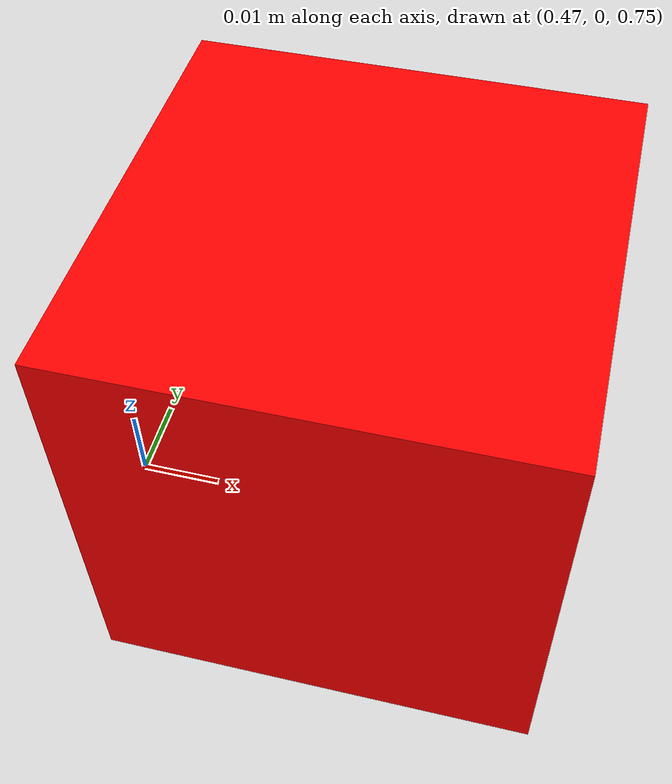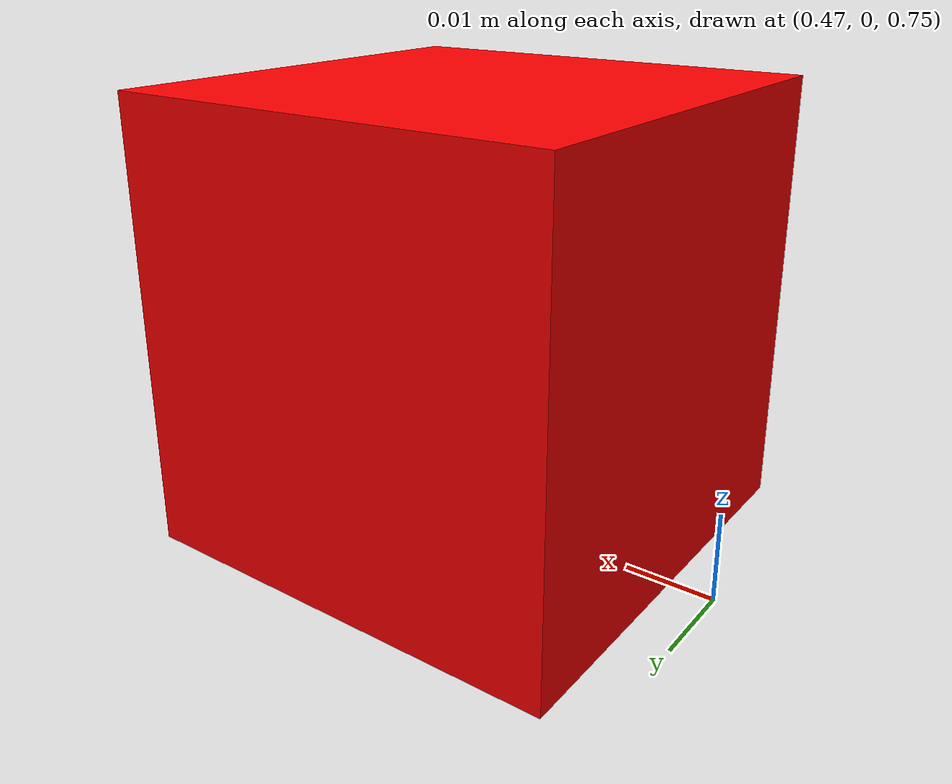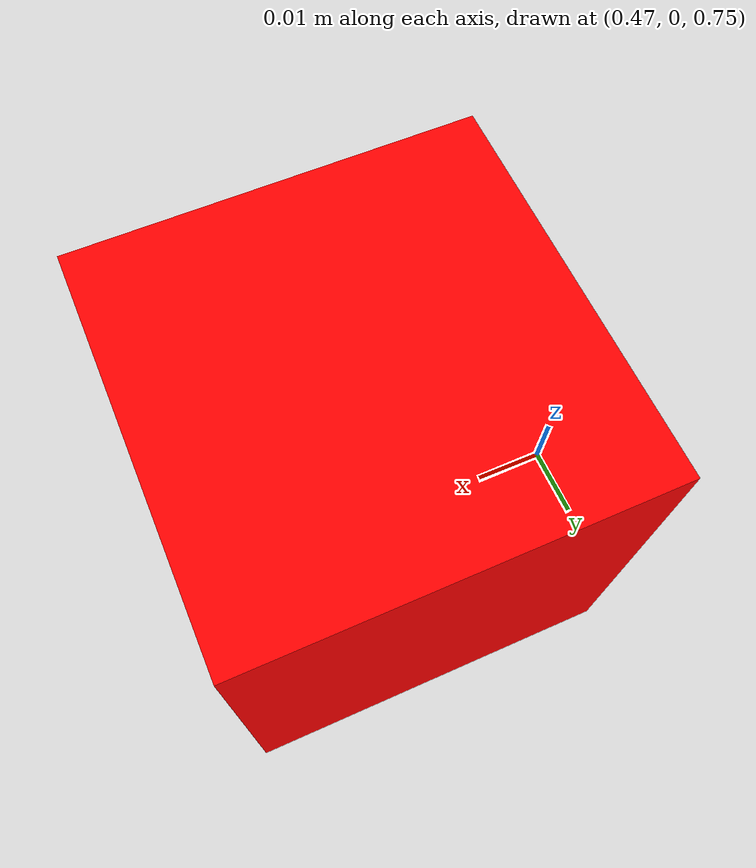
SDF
<?xml version="1.0" ?>
<sdf version="1.6">
  <world name="ur5e_task_world">
    <include>
      <uri>model://sun</uri>
    </include>
    <include>
      <uri>model://ground_plane</uri>
    </include>

    <model name="target_cube">
      <pose>0.5 0.0 0.775 0 0 0</pose> <link name="link">
        <inertial>
          <mass>0.1</mass>
          <inertia>
            <ixx>0.0000833</ixx>
            <ixy>0</ixy>
            <ixz>0</ixz>
            <iyy>0.0000833</iyy>
            <iyz>0</iyz>
            <izz>0.0000833</izz>
          </inertia>
        </inertial>
        <visual name="visual">
          <geometry><box><size>0.05 0.05 0.05</size></box></geometry>
          <material><ambient>1 0 0 1</ambient></material> </visual>
        <collision name="collision">
          <geometry><box><size>0.05 0.05 0.05</size></box></geometry>
        </collision>
      </link>
    </model>

    <model name="target_bin">
      <pose>0.0 0.5 0.75 0 0 0</pose>
      <static>true</static>
      <link name="link">
        <visual name="visual">
          <geometry><cylinder><radius>0.1</radius><length>0.01</length></cylinder></geometry>
          <material><ambient>0 1 0 0.5</ambient></material> </visual>
      </link>
    </model>

  </world>
</sdf>
